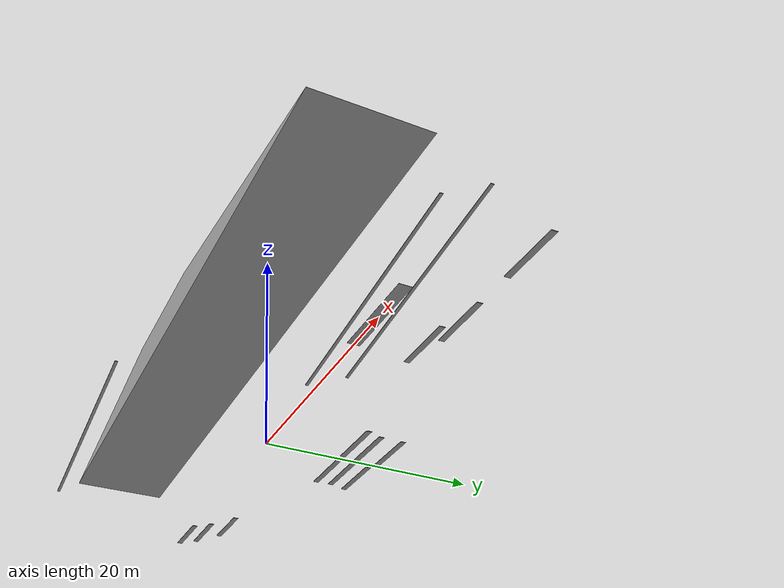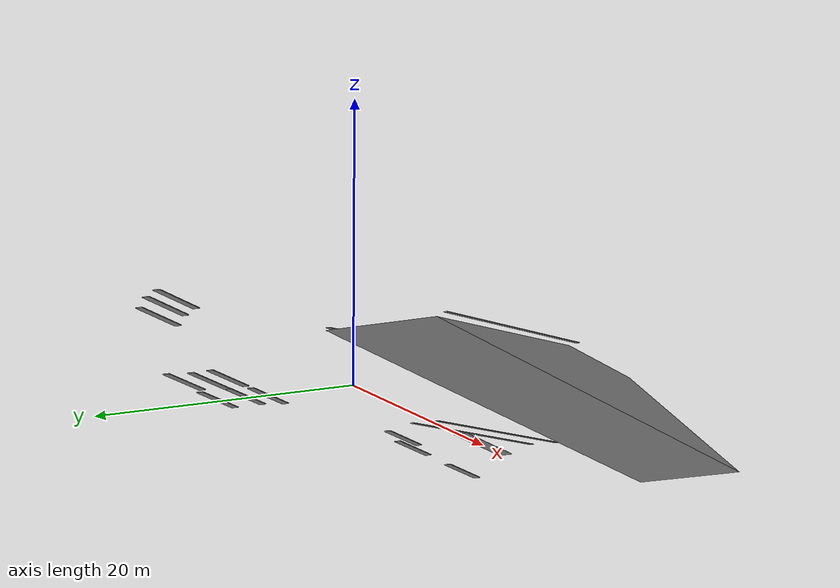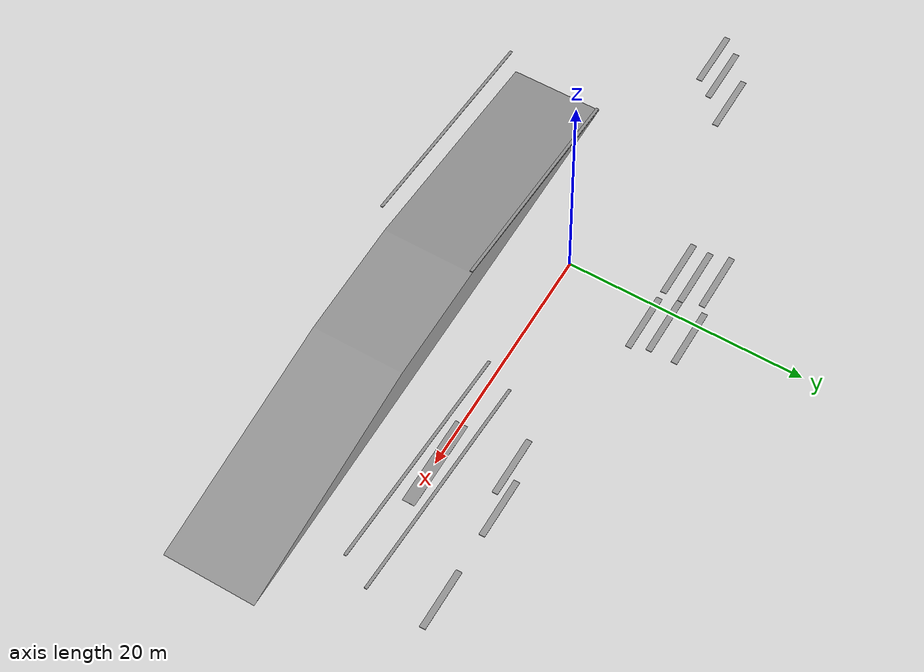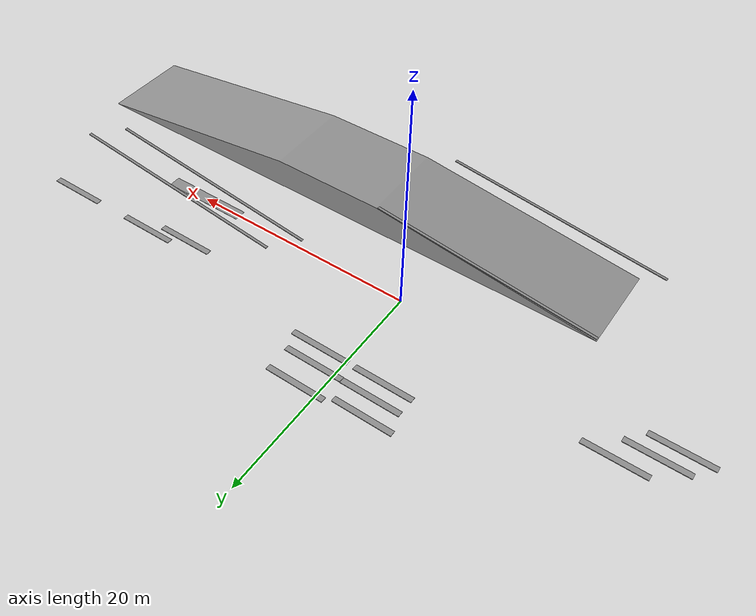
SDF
<?xml version='1.0'?>
<sdf version='1.7'>
  <model name='Hill'>
    <link name='hill_model'>
      <inertial>
        <mass>100</mass>
        <inertia>
          <ixx>0.166667</ixx>
          <ixy>0</ixy>
          <ixz>0</ixz>
          <iyy>0.166667</iyy>
          <iyz>0</iyz>
          <izz>0.166667</izz>
        </inertia>
        <pose>0 0 0 0 -0 0</pose>
      </inertial>
      <pose>8e-06 -3.4e-05 -0.020001 0 -0 0</pose>
      <self_collide>1</self_collide>
      <enable_wind>0</enable_wind>
      <kinematic>0</kinematic>
      <gravity>0</gravity>
      <visual name='visual'>
        <pose>0 0 0 0 -0 0</pose>
        <geometry>
          <mesh>
            <uri>/home/yg/ros2/OOM_Self-driving-car-line_tracker/src/ros2_term_project/3dfile/언덕구간.stl</uri>
            <scale>0.2 0.26 0.25</scale>
          </mesh>
        </geometry>
        <material>
          <lighting>1</lighting>
          <script>
            <uri>file://media/materials/scripts/gazebo.material</uri>
            <name>Gazebo/Grey</name>
          </script>
          <shader type='pixel'>
            <normal_map>__default__</normal_map>
          </shader>
          <ambient>0.3 0.3 0.3 1</ambient>
          <diffuse>0.7 0.7 0.7 1</diffuse>
          <specular>0.01 0.01 0.01 1</specular>
          <emissive>0 0 0 1</emissive>
        </material>
        <transparency>0</transparency>
        <cast_shadows>1</cast_shadows>
      </visual>
      <collision name='collision'>
        <laser_retro>0</laser_retro>
        <max_contacts>10</max_contacts>
        <pose>0 0 0 0 -0 0</pose>
        <geometry>
          <mesh>
            <uri>/home/yg/ros2/OOM_Self-driving-car-line_tracker/src/ros2_term_project/3dfile/언덕구간.stl</uri>
            <scale>0.2 0.26 0.25</scale>
          </mesh>
        </geometry>
        <surface>
          <friction>
            <ode>
              <mu>1</mu>
              <mu2>1</mu2>
              <fdir1>0 0 0</fdir1>
              <slip1>0</slip1>
              <slip2>0</slip2>
            </ode>
            <torsional>
              <coefficient>1</coefficient>
              <patch_radius>0</patch_radius>
              <surface_radius>0</surface_radius>
              <use_patch_radius>1</use_patch_radius>
              <ode>
                <slip>0</slip>
              </ode>
            </torsional>
          </friction>
          <bounce>
            <restitution_coefficient>0</restitution_coefficient>
            <threshold>1e+06</threshold>
          </bounce>
          <contact>
            <collide_without_contact>0</collide_without_contact>
            <collide_without_contact_bitmask>1</collide_without_contact_bitmask>
            <collide_bitmask>1</collide_bitmask>
            <ode>
              <soft_cfm>0</soft_cfm>
              <soft_erp>0.2</soft_erp>
              <kp>1e+13</kp>
              <kd>1</kd>
              <max_vel>0.01</max_vel>
              <min_depth>0</min_depth>
            </ode>
            <bullet>
              <split_impulse>1</split_impulse>
              <split_impulse_penetration_threshold>-0.01</split_impulse_penetration_threshold>
              <soft_cfm>0</soft_cfm>
              <soft_erp>0.2</soft_erp>
              <kp>1e+13</kp>
              <kd>1</kd>
            </bullet>
          </contact>
        </surface>
      </collision>
    </link>
    <link name='hill_center_line_1'>
      <inertial>
        <mass>1</mass>
        <inertia>
          <ixx>0.166667</ixx>
          <ixy>0</ixy>
          <ixz>0</ixz>
          <iyy>0.166667</iyy>
          <iyz>0</iyz>
          <izz>0.166667</izz>
        </inertia>
        <pose>0 0 0 0 -0 0</pose>
      </inertial>
      <pose>-21.7063 1.98729 0.584002 0.017068 -0 0</pose>
      <gravity>1</gravity>
      <self_collide>1</self_collide>
      <kinematic>0</kinematic>
      <enable_wind>0</enable_wind>
      <visual name='visual'>
        <pose>0 0 0 0 -0 0</pose>
        <geometry>
          <box>
            <size>5 0.5 0.05</size>
          </box>
        </geometry>
        <material>
          <lighting>1</lighting>
          <script>
            <uri>file://media/materials/scripts/gazebo.material</uri>
            <name>Gazebo/Grey</name>
          </script>
          <shader type='pixel'>
            <normal_map>__default__</normal_map>
          </shader>
          <ambient>1 1 1 1</ambient>
          <diffuse>1 1 1 1</diffuse>
          <specular>1 1 1 1</specular>
          <emissive>1 1 1 1</emissive>
        </material>
        <transparency>0</transparency>
        <cast_shadows>1</cast_shadows>
      </visual>
      <collision name='collision'>
        <laser_retro>0</laser_retro>
        <max_contacts>10</max_contacts>
        <pose>0 0 0 0 -0 0</pose>
        <geometry>
          <box>
            <size>5 0.5 0.05</size>
          </box>
        </geometry>
        <surface>
          <friction>
            <ode>
              <mu>1</mu>
              <mu2>1</mu2>
              <fdir1>0 0 0</fdir1>
              <slip1>0</slip1>
              <slip2>0</slip2>
            </ode>
            <torsional>
              <coefficient>1</coefficient>
              <patch_radius>0</patch_radius>
              <surface_radius>0</surface_radius>
              <use_patch_radius>1</use_patch_radius>
              <ode>
                <slip>0</slip>
              </ode>
            </torsional>
          </friction>
          <bounce>
            <restitution_coefficient>0</restitution_coefficient>
            <threshold>1e+06</threshold>
          </bounce>
          <contact>
            <collide_without_contact>0</collide_without_contact>
            <collide_without_contact_bitmask>1</collide_without_contact_bitmask>
            <collide_bitmask>1</collide_bitmask>
            <ode>
              <soft_cfm>0</soft_cfm>
              <soft_erp>0.2</soft_erp>
              <kp>1e+13</kp>
              <kd>1</kd>
              <max_vel>0.01</max_vel>
              <min_depth>0</min_depth>
            </ode>
            <bullet>
              <split_impulse>1</split_impulse>
              <split_impulse_penetration_threshold>-0.01</split_impulse_penetration_threshold>
              <soft_cfm>0</soft_cfm>
              <soft_erp>0.2</soft_erp>
              <kp>1e+13</kp>
              <kd>1</kd>
            </bullet>
          </contact>
        </surface>
      </collision>
    </link>
    <link name='hill_center_line_1_clone'>
      <inertial>
        <mass>1</mass>
        <inertia>
          <ixx>0.166667</ixx>
          <ixy>0</ixy>
          <ixz>0</ixz>
          <iyy>0.166667</iyy>
          <iyz>0</iyz>
          <izz>0.166667</izz>
        </inertia>
        <pose>0 0 0 0 -0 0</pose>
      </inertial>
      <pose>-3.50998 7.62557 0.584002 0.017068 -0 0</pose>
      <gravity>1</gravity>
      <self_collide>1</self_collide>
      <kinematic>0</kinematic>
      <enable_wind>0</enable_wind>
      <visual name='visual'>
        <pose>0 0 0 0 -0 0</pose>
        <geometry>
          <box>
            <size>5 0.5 0.05</size>
          </box>
        </geometry>
        <material>
          <lighting>1</lighting>
          <script>
            <uri>file://media/materials/scripts/gazebo.material</uri>
            <name>Gazebo/Grey</name>
          </script>
          <shader type='pixel'>
            <normal_map>__default__</normal_map>
          </shader>
          <ambient>1 1 1 1</ambient>
          <diffuse>1 1 1 1</diffuse>
          <specular>1 1 1 1</specular>
          <emissive>1 1 1 1</emissive>
        </material>
        <transparency>0</transparency>
        <cast_shadows>1</cast_shadows>
      </visual>
      <collision name='collision'>
        <laser_retro>0</laser_retro>
        <max_contacts>10</max_contacts>
        <pose>0 0 0 0 -0 0</pose>
        <geometry>
          <box>
            <size>5 0.5 0.05</size>
          </box>
        </geometry>
        <surface>
          <friction>
            <ode>
              <mu>1</mu>
              <mu2>1</mu2>
              <fdir1>0 0 0</fdir1>
              <slip1>0</slip1>
              <slip2>0</slip2>
            </ode>
            <torsional>
              <coefficient>1</coefficient>
              <patch_radius>0</patch_radius>
              <surface_radius>0</surface_radius>
              <use_patch_radius>1</use_patch_radius>
              <ode>
                <slip>0</slip>
              </ode>
            </torsional>
          </friction>
          <bounce>
            <restitution_coefficient>0</restitution_coefficient>
            <threshold>1e+06</threshold>
          </bounce>
          <contact>
            <collide_without_contact>0</collide_without_contact>
            <collide_without_contact_bitmask>1</collide_without_contact_bitmask>
            <collide_bitmask>1</collide_bitmask>
            <ode>
              <soft_cfm>0</soft_cfm>
              <soft_erp>0.2</soft_erp>
              <kp>1e+13</kp>
              <kd>1</kd>
              <max_vel>0.01</max_vel>
              <min_depth>0</min_depth>
            </ode>
            <bullet>
              <split_impulse>1</split_impulse>
              <split_impulse_penetration_threshold>-0.01</split_impulse_penetration_threshold>
              <soft_cfm>0</soft_cfm>
              <soft_erp>0.2</soft_erp>
              <kp>1e+13</kp>
              <kd>1</kd>
            </bullet>
          </contact>
        </surface>
      </collision>
    </link>
    <link name='hill_center_line_1_clone_0'>
      <inertial>
        <mass>1</mass>
        <inertia>
          <ixx>0.166667</ixx>
          <ixy>0</ixy>
          <ixz>0</ixz>
          <iyy>0.166667</iyy>
          <iyz>0</iyz>
          <izz>0.166667</izz>
        </inertia>
        <pose>0 0 0 0 -0 0</pose>
      </inertial>
      <pose>-3.45553 9.11044 0.584002 0.017068 -0 0</pose>
      <gravity>1</gravity>
      <self_collide>1</self_collide>
      <kinematic>0</kinematic>
      <enable_wind>0</enable_wind>
      <visual name='visual'>
        <pose>0 0 0 0 -0 0</pose>
        <geometry>
          <box>
            <size>5 0.5 0.05</size>
          </box>
        </geometry>
        <material>
          <lighting>1</lighting>
          <script>
            <uri>file://media/materials/scripts/gazebo.material</uri>
            <name>Gazebo/Grey</name>
          </script>
          <shader type='pixel'>
            <normal_map>__default__</normal_map>
          </shader>
          <ambient>1 1 1 1</ambient>
          <diffuse>1 1 1 1</diffuse>
          <specular>1 1 1 1</specular>
          <emissive>1 1 1 1</emissive>
        </material>
        <transparency>0</transparency>
        <cast_shadows>1</cast_shadows>
      </visual>
      <collision name='collision'>
        <laser_retro>0</laser_retro>
        <max_contacts>10</max_contacts>
        <pose>0 0 0 0 -0 0</pose>
        <geometry>
          <box>
            <size>5 0.5 0.05</size>
          </box>
        </geometry>
        <surface>
          <friction>
            <ode>
              <mu>1</mu>
              <mu2>1</mu2>
              <fdir1>0 0 0</fdir1>
              <slip1>0</slip1>
              <slip2>0</slip2>
            </ode>
            <torsional>
              <coefficient>1</coefficient>
              <patch_radius>0</patch_radius>
              <surface_radius>0</surface_radius>
              <use_patch_radius>1</use_patch_radius>
              <ode>
                <slip>0</slip>
              </ode>
            </torsional>
          </friction>
          <bounce>
            <restitution_coefficient>0</restitution_coefficient>
            <threshold>1e+06</threshold>
          </bounce>
          <contact>
            <collide_without_contact>0</collide_without_contact>
            <collide_without_contact_bitmask>1</collide_without_contact_bitmask>
            <collide_bitmask>1</collide_bitmask>
            <ode>
              <soft_cfm>0</soft_cfm>
              <soft_erp>0.2</soft_erp>
              <kp>1e+13</kp>
              <kd>1</kd>
              <max_vel>0.01</max_vel>
              <min_depth>0</min_depth>
            </ode>
            <bullet>
              <split_impulse>1</split_impulse>
              <split_impulse_penetration_threshold>-0.01</split_impulse_penetration_threshold>
              <soft_cfm>0</soft_cfm>
              <soft_erp>0.2</soft_erp>
              <kp>1e+13</kp>
              <kd>1</kd>
            </bullet>
          </contact>
        </surface>
      </collision>
    </link>
    <link name='hill_center_line_1_clone_1'>
      <inertial>
        <mass>1</mass>
        <inertia>
          <ixx>0.166667</ixx>
          <ixy>0</ixy>
          <ixz>0</ixz>
          <iyy>0.166667</iyy>
          <iyz>0</iyz>
          <izz>0.166667</izz>
        </inertia>
        <pose>0 0 0 0 -0 0</pose>
      </inertial>
      <pose>-3.90601 10.7359 0.584002 0.017068 -0 0</pose>
      <gravity>1</gravity>
      <self_collide>1</self_collide>
      <kinematic>0</kinematic>
      <enable_wind>0</enable_wind>
      <visual name='visual'>
        <pose>0 0 0 0 -0 0</pose>
        <geometry>
          <box>
            <size>5 0.5 0.05</size>
          </box>
        </geometry>
        <material>
          <lighting>1</lighting>
          <script>
            <uri>file://media/materials/scripts/gazebo.material</uri>
            <name>Gazebo/Grey</name>
          </script>
          <shader type='pixel'>
            <normal_map>__default__</normal_map>
          </shader>
          <ambient>1 1 1 1</ambient>
          <diffuse>1 1 1 1</diffuse>
          <specular>1 1 1 1</specular>
          <emissive>1 1 1 1</emissive>
        </material>
        <transparency>0</transparency>
        <cast_shadows>1</cast_shadows>
      </visual>
      <collision name='collision'>
        <laser_retro>0</laser_retro>
        <max_contacts>10</max_contacts>
        <pose>0 0 0 0 -0 0</pose>
        <geometry>
          <box>
            <size>5 0.5 0.05</size>
          </box>
        </geometry>
        <surface>
          <friction>
            <ode>
              <mu>1</mu>
              <mu2>1</mu2>
              <fdir1>0 0 0</fdir1>
              <slip1>0</slip1>
              <slip2>0</slip2>
            </ode>
            <torsional>
              <coefficient>1</coefficient>
              <patch_radius>0</patch_radius>
              <surface_radius>0</surface_radius>
              <use_patch_radius>1</use_patch_radius>
              <ode>
                <slip>0</slip>
              </ode>
            </torsional>
          </friction>
          <bounce>
            <restitution_coefficient>0</restitution_coefficient>
            <threshold>1e+06</threshold>
          </bounce>
          <contact>
            <collide_without_contact>0</collide_without_contact>
            <collide_without_contact_bitmask>1</collide_without_contact_bitmask>
            <collide_bitmask>1</collide_bitmask>
            <ode>
              <soft_cfm>0</soft_cfm>
              <soft_erp>0.2</soft_erp>
              <kp>1e+13</kp>
              <kd>1</kd>
              <max_vel>0.01</max_vel>
              <min_depth>0</min_depth>
            </ode>
            <bullet>
              <split_impulse>1</split_impulse>
              <split_impulse_penetration_threshold>-0.01</split_impulse_penetration_threshold>
              <soft_cfm>0</soft_cfm>
              <soft_erp>0.2</soft_erp>
              <kp>1e+13</kp>
              <kd>1</kd>
            </bullet>
          </contact>
        </surface>
      </collision>
    </link>
    <link name='hill_center_line_1_clone_2'>
      <inertial>
        <mass>1</mass>
        <inertia>
          <ixx>0.166667</ixx>
          <ixy>0</ixy>
          <ixz>0</ixz>
          <iyy>0.166667</iyy>
          <iyz>0</iyz>
          <izz>0.166667</izz>
        </inertia>
        <pose>0 0 0 0 -0 0</pose>
      </inertial>
      <pose>2.07681 7.61238 0.584002 0.017068 -0 0</pose>
      <gravity>1</gravity>
      <self_collide>1</self_collide>
      <kinematic>0</kinematic>
      <enable_wind>0</enable_wind>
      <visual name='visual'>
        <pose>0 0 0 0 -0 0</pose>
        <geometry>
          <box>
            <size>5 0.5 0.05</size>
          </box>
        </geometry>
        <material>
          <lighting>1</lighting>
          <script>
            <uri>file://media/materials/scripts/gazebo.material</uri>
            <name>Gazebo/Grey</name>
          </script>
          <shader type='pixel'>
            <normal_map>__default__</normal_map>
          </shader>
          <ambient>1 1 1 1</ambient>
          <diffuse>1 1 1 1</diffuse>
          <specular>1 1 1 1</specular>
          <emissive>1 1 1 1</emissive>
        </material>
        <transparency>0</transparency>
        <cast_shadows>1</cast_shadows>
      </visual>
      <collision name='collision'>
        <laser_retro>0</laser_retro>
        <max_contacts>10</max_contacts>
        <pose>0 0 0 0 -0 0</pose>
        <geometry>
          <box>
            <size>5 0.5 0.05</size>
          </box>
        </geometry>
        <surface>
          <friction>
            <ode>
              <mu>1</mu>
              <mu2>1</mu2>
              <fdir1>0 0 0</fdir1>
              <slip1>0</slip1>
              <slip2>0</slip2>
            </ode>
            <torsional>
              <coefficient>1</coefficient>
              <patch_radius>0</patch_radius>
              <surface_radius>0</surface_radius>
              <use_patch_radius>1</use_patch_radius>
              <ode>
                <slip>0</slip>
              </ode>
            </torsional>
          </friction>
          <bounce>
            <restitution_coefficient>0</restitution_coefficient>
            <threshold>1e+06</threshold>
          </bounce>
          <contact>
            <collide_without_contact>0</collide_without_contact>
            <collide_without_contact_bitmask>1</collide_without_contact_bitmask>
            <collide_bitmask>1</collide_bitmask>
            <ode>
              <soft_cfm>0</soft_cfm>
              <soft_erp>0.2</soft_erp>
              <kp>1e+13</kp>
              <kd>1</kd>
              <max_vel>0.01</max_vel>
              <min_depth>0</min_depth>
            </ode>
            <bullet>
              <split_impulse>1</split_impulse>
              <split_impulse_penetration_threshold>-0.01</split_impulse_penetration_threshold>
              <soft_cfm>0</soft_cfm>
              <soft_erp>0.2</soft_erp>
              <kp>1e+13</kp>
              <kd>1</kd>
            </bullet>
          </contact>
        </surface>
      </collision>
    </link>
    <link name='hill_center_line_1_clone_3'>
      <inertial>
        <mass>1</mass>
        <inertia>
          <ixx>0.166667</ixx>
          <ixy>0</ixy>
          <ixz>0</ixz>
          <iyy>0.166667</iyy>
          <iyz>0</iyz>
          <izz>0.166667</izz>
        </inertia>
        <pose>0 0 0 0 -0 0</pose>
      </inertial>
      <pose>1.57351 9.09087 0.584002 0.017068 -0 0</pose>
      <gravity>1</gravity>
      <self_collide>1</self_collide>
      <kinematic>0</kinematic>
      <enable_wind>0</enable_wind>
      <visual name='visual'>
        <pose>0 0 0 0 -0 0</pose>
        <geometry>
          <box>
            <size>5 0.5 0.05</size>
          </box>
        </geometry>
        <material>
          <lighting>1</lighting>
          <script>
            <uri>file://media/materials/scripts/gazebo.material</uri>
            <name>Gazebo/Grey</name>
          </script>
          <shader type='pixel'>
            <normal_map>__default__</normal_map>
          </shader>
          <ambient>1 1 1 1</ambient>
          <diffuse>1 1 1 1</diffuse>
          <specular>1 1 1 1</specular>
          <emissive>1 1 1 1</emissive>
        </material>
        <transparency>0</transparency>
        <cast_shadows>1</cast_shadows>
      </visual>
      <collision name='collision'>
        <laser_retro>0</laser_retro>
        <max_contacts>10</max_contacts>
        <pose>0 0 0 0 -0 0</pose>
        <geometry>
          <box>
            <size>5 0.5 0.05</size>
          </box>
        </geometry>
        <surface>
          <friction>
            <ode>
              <mu>1</mu>
              <mu2>1</mu2>
              <fdir1>0 0 0</fdir1>
              <slip1>0</slip1>
              <slip2>0</slip2>
            </ode>
            <torsional>
              <coefficient>1</coefficient>
              <patch_radius>0</patch_radius>
              <surface_radius>0</surface_radius>
              <use_patch_radius>1</use_patch_radius>
              <ode>
                <slip>0</slip>
              </ode>
            </torsional>
          </friction>
          <bounce>
            <restitution_coefficient>0</restitution_coefficient>
            <threshold>1e+06</threshold>
          </bounce>
          <contact>
            <collide_without_contact>0</collide_without_contact>
            <collide_without_contact_bitmask>1</collide_without_contact_bitmask>
            <collide_bitmask>1</collide_bitmask>
            <ode>
              <soft_cfm>0</soft_cfm>
              <soft_erp>0.2</soft_erp>
              <kp>1e+13</kp>
              <kd>1</kd>
              <max_vel>0.01</max_vel>
              <min_depth>0</min_depth>
            </ode>
            <bullet>
              <split_impulse>1</split_impulse>
              <split_impulse_penetration_threshold>-0.01</split_impulse_penetration_threshold>
              <soft_cfm>0</soft_cfm>
              <soft_erp>0.2</soft_erp>
              <kp>1e+13</kp>
              <kd>1</kd>
            </bullet>
          </contact>
        </surface>
      </collision>
    </link>
    <link name='hill_center_line_1_clone_4'>
      <inertial>
        <mass>1</mass>
        <inertia>
          <ixx>0.166667</ixx>
          <ixy>0</ixy>
          <ixz>0</ixz>
          <iyy>0.166667</iyy>
          <iyz>0</iyz>
          <izz>0.166667</izz>
        </inertia>
        <pose>0 0 0 0 -0 0</pose>
      </inertial>
      <pose>1.5596 11.2413 0.584002 0.017068 -0 0</pose>
      <gravity>1</gravity>
      <self_collide>1</self_collide>
      <kinematic>0</kinematic>
      <enable_wind>0</enable_wind>
      <visual name='visual'>
        <pose>0 0 0 0 -0 0</pose>
        <geometry>
          <box>
            <size>5 0.5 0.05</size>
          </box>
        </geometry>
        <material>
          <lighting>1</lighting>
          <script>
            <uri>file://media/materials/scripts/gazebo.material</uri>
            <name>Gazebo/Grey</name>
          </script>
          <shader type='pixel'>
            <normal_map>__default__</normal_map>
          </shader>
          <ambient>1 1 1 1</ambient>
          <diffuse>1 1 1 1</diffuse>
          <specular>1 1 1 1</specular>
          <emissive>1 1 1 1</emissive>
        </material>
        <transparency>0</transparency>
        <cast_shadows>1</cast_shadows>
      </visual>
      <collision name='collision'>
        <laser_retro>0</laser_retro>
        <max_contacts>10</max_contacts>
        <pose>0 0 0 0 -0 0</pose>
        <geometry>
          <box>
            <size>5 0.5 0.05</size>
          </box>
        </geometry>
        <surface>
          <friction>
            <ode>
              <mu>1</mu>
              <mu2>1</mu2>
              <fdir1>0 0 0</fdir1>
              <slip1>0</slip1>
              <slip2>0</slip2>
            </ode>
            <torsional>
              <coefficient>1</coefficient>
              <patch_radius>0</patch_radius>
              <surface_radius>0</surface_radius>
              <use_patch_radius>1</use_patch_radius>
              <ode>
                <slip>0</slip>
              </ode>
            </torsional>
          </friction>
          <bounce>
            <restitution_coefficient>0</restitution_coefficient>
            <threshold>1e+06</threshold>
          </bounce>
          <contact>
            <collide_without_contact>0</collide_without_contact>
            <collide_without_contact_bitmask>1</collide_without_contact_bitmask>
            <collide_bitmask>1</collide_bitmask>
            <ode>
              <soft_cfm>0</soft_cfm>
              <soft_erp>0.2</soft_erp>
              <kp>1e+13</kp>
              <kd>1</kd>
              <max_vel>0.01</max_vel>
              <min_depth>0</min_depth>
            </ode>
            <bullet>
              <split_impulse>1</split_impulse>
              <split_impulse_penetration_threshold>-0.01</split_impulse_penetration_threshold>
              <soft_cfm>0</soft_cfm>
              <soft_erp>0.2</soft_erp>
              <kp>1e+13</kp>
              <kd>1</kd>
            </bullet>
          </contact>
        </surface>
      </collision>
    </link>
    <link name='hill_center_line_2'>
      <inertial>
        <mass>1</mass>
        <inertia>
          <ixx>0.166667</ixx>
          <ixy>0</ixy>
          <ixz>0</ixz>
          <iyy>0.166667</iyy>
          <iyz>0</iyz>
          <izz>0.166667</izz>
        </inertia>
        <pose>0 0 0 0 -0 0</pose>
      </inertial>
      <pose>-22.8574 0.567898 0.593781 0.034136 -0 0</pose>
      <gravity>1</gravity>
      <self_collide>1</self_collide>
      <kinematic>0</kinematic>
      <enable_wind>0</enable_wind>
      <visual name='visual'>
        <pose>0 0 0 0 -0 0</pose>
        <geometry>
          <box>
            <size>5 0.5 0.05</size>
          </box>
        </geometry>
        <material>
          <lighting>1</lighting>
          <script>
            <uri>file://media/materials/scripts/gazebo.material</uri>
            <name>Gazebo/Grey</name>
          </script>
          <shader type='pixel'>
            <normal_map>__default__</normal_map>
          </shader>
          <ambient>1 1 1 1</ambient>
          <diffuse>1 1 1 1</diffuse>
          <specular>1 1 1 1</specular>
          <emissive>1 1 1 1</emissive>
        </material>
        <transparency>0</transparency>
        <cast_shadows>1</cast_shadows>
      </visual>
      <collision name='collision'>
        <laser_retro>0</laser_retro>
        <max_contacts>10</max_contacts>
        <pose>0 0 0 0 -0 0</pose>
        <geometry>
          <box>
            <size>5 0.5 0.05</size>
          </box>
        </geometry>
        <surface>
          <friction>
            <ode>
              <mu>1</mu>
              <mu2>1</mu2>
              <fdir1>0 0 0</fdir1>
              <slip1>0</slip1>
              <slip2>0</slip2>
            </ode>
            <torsional>
              <coefficient>1</coefficient>
              <patch_radius>0</patch_radius>
              <surface_radius>0</surface_radius>
              <use_patch_radius>1</use_patch_radius>
              <ode>
                <slip>0</slip>
              </ode>
            </torsional>
          </friction>
          <bounce>
            <restitution_coefficient>0</restitution_coefficient>
            <threshold>1e+06</threshold>
          </bounce>
          <contact>
            <collide_without_contact>0</collide_without_contact>
            <collide_without_contact_bitmask>1</collide_without_contact_bitmask>
            <collide_bitmask>1</collide_bitmask>
            <ode>
              <soft_cfm>0</soft_cfm>
              <soft_erp>0.2</soft_erp>
              <kp>1e+13</kp>
              <kd>1</kd>
              <max_vel>0.01</max_vel>
              <min_depth>0</min_depth>
            </ode>
            <bullet>
              <split_impulse>1</split_impulse>
              <split_impulse_penetration_threshold>-0.01</split_impulse_penetration_threshold>
              <soft_cfm>0</soft_cfm>
              <soft_erp>0.2</soft_erp>
              <kp>1e+13</kp>
              <kd>1</kd>
            </bullet>
          </contact>
        </surface>
      </collision>
    </link>
    <link name='hill_center_line_3'>
      <inertial>
        <mass>1</mass>
        <inertia>
          <ixx>0.166667</ixx>
          <ixy>0</ixy>
          <ixz>0</ixz>
          <iyy>0.166667</iyy>
          <iyz>0</iyz>
          <izz>0.166667</izz>
        </inertia>
        <pose>0 0 0 0 -0 0</pose>
      </inertial>
      <pose>-19.4479 3.7915 0.648807 0.034136 -0 0</pose>
      <gravity>1</gravity>
      <self_collide>1</self_collide>
      <kinematic>0</kinematic>
      <enable_wind>0</enable_wind>
      <visual name='visual'>
        <pose>0 0 0 0 -0 0</pose>
        <geometry>
          <box>
            <size>5 0.5 0.05</size>
          </box>
        </geometry>
        <material>
          <lighting>1</lighting>
          <script>
            <uri>file://media/materials/scripts/gazebo.material</uri>
            <name>Gazebo/Grey</name>
          </script>
          <shader type='pixel'>
            <normal_map>__default__</normal_map>
          </shader>
          <ambient>1 1 1 1</ambient>
          <diffuse>1 1 1 1</diffuse>
          <specular>1 1 1 1</specular>
          <emissive>1 1 1 1</emissive>
        </material>
        <transparency>0</transparency>
        <cast_shadows>1</cast_shadows>
      </visual>
      <collision name='collision'>
        <laser_retro>0</laser_retro>
        <max_contacts>10</max_contacts>
        <pose>0 0 0 0 -0 0</pose>
        <geometry>
          <box>
            <size>5 0.5 0.05</size>
          </box>
        </geometry>
        <surface>
          <friction>
            <ode>
              <mu>1</mu>
              <mu2>1</mu2>
              <fdir1>0 0 0</fdir1>
              <slip1>0</slip1>
              <slip2>0</slip2>
            </ode>
            <torsional>
              <coefficient>1</coefficient>
              <patch_radius>0</patch_radius>
              <surface_radius>0</surface_radius>
              <use_patch_radius>1</use_patch_radius>
              <ode>
                <slip>0</slip>
              </ode>
            </torsional>
          </friction>
          <bounce>
            <restitution_coefficient>0</restitution_coefficient>
            <threshold>1e+06</threshold>
          </bounce>
          <contact>
            <collide_without_contact>0</collide_without_contact>
            <collide_without_contact_bitmask>1</collide_without_contact_bitmask>
            <collide_bitmask>1</collide_bitmask>
            <ode>
              <soft_cfm>0</soft_cfm>
              <soft_erp>0.2</soft_erp>
              <kp>1e+13</kp>
              <kd>1</kd>
              <max_vel>0.01</max_vel>
              <min_depth>0</min_depth>
            </ode>
            <bullet>
              <split_impulse>1</split_impulse>
              <split_impulse_penetration_threshold>-0.01</split_impulse_penetration_threshold>
              <soft_cfm>0</soft_cfm>
              <soft_erp>0.2</soft_erp>
              <kp>1e+13</kp>
              <kd>1</kd>
            </bullet>
          </contact>
        </surface>
      </collision>
    </link>
    <link name='hill_center_line_down_1'>
      <inertial>
        <mass>1</mass>
        <inertia>
          <ixx>0.166667</ixx>
          <ixy>0</ixy>
          <ixz>0</ixz>
          <iyy>0.166667</iyy>
          <iyz>0</iyz>
          <izz>0.166667</izz>
        </inertia>
        <pose>0 0 0 0 -0 0</pose>
      </inertial>
      <pose>29.1675 6.06852 0.584002 0.017068 -0 0</pose>
      <gravity>1</gravity>
      <self_collide>1</self_collide>
      <kinematic>0</kinematic>
      <enable_wind>0</enable_wind>
      <visual name='visual'>
        <pose>0 0 0 0 -0 0</pose>
        <geometry>
          <box>
            <size>5 0.5 0.05</size>
          </box>
        </geometry>
        <material>
          <lighting>1</lighting>
          <script>
            <uri>file://media/materials/scripts/gazebo.material</uri>
            <name>Gazebo/Grey</name>
          </script>
          <shader type='pixel'>
            <normal_map>__default__</normal_map>
          </shader>
          <ambient>1 1 1 1</ambient>
          <diffuse>1 1 1 1</diffuse>
          <specular>1 1 1 1</specular>
          <emissive>1 1 1 1</emissive>
        </material>
        <transparency>0</transparency>
        <cast_shadows>1</cast_shadows>
      </visual>
      <collision name='collision'>
        <laser_retro>0</laser_retro>
        <max_contacts>10</max_contacts>
        <pose>0 0 0 0 -0 0</pose>
        <geometry>
          <box>
            <size>5 0.5 0.05</size>
          </box>
        </geometry>
        <surface>
          <friction>
            <ode>
              <mu>1</mu>
              <mu2>1</mu2>
              <fdir1>0 0 0</fdir1>
              <slip1>0</slip1>
              <slip2>0</slip2>
            </ode>
            <torsional>
              <coefficient>1</coefficient>
              <patch_radius>0</patch_radius>
              <surface_radius>0</surface_radius>
              <use_patch_radius>1</use_patch_radius>
              <ode>
                <slip>0</slip>
              </ode>
            </torsional>
          </friction>
          <bounce>
            <restitution_coefficient>0</restitution_coefficient>
            <threshold>1e+06</threshold>
          </bounce>
          <contact>
            <collide_without_contact>0</collide_without_contact>
            <collide_without_contact_bitmask>1</collide_without_contact_bitmask>
            <collide_bitmask>1</collide_bitmask>
            <ode>
              <soft_cfm>0</soft_cfm>
              <soft_erp>0.2</soft_erp>
              <kp>1e+13</kp>
              <kd>1</kd>
              <max_vel>0.01</max_vel>
              <min_depth>0</min_depth>
            </ode>
            <bullet>
              <split_impulse>1</split_impulse>
              <split_impulse_penetration_threshold>-0.01</split_impulse_penetration_threshold>
              <soft_cfm>0</soft_cfm>
              <soft_erp>0.2</soft_erp>
              <kp>1e+13</kp>
              <kd>1</kd>
            </bullet>
          </contact>
        </surface>
      </collision>
    </link>
    <link name='hill_center_line_down_2'>
      <inertial>
        <mass>1</mass>
        <inertia>
          <ixx>0.166667</ixx>
          <ixy>0</ixy>
          <ixz>0</ixz>
          <iyy>0.166667</iyy>
          <iyz>0</iyz>
          <izz>0.166667</izz>
        </inertia>
        <pose>0 0 0 0 -0 0</pose>
      </inertial>
      <pose>17.6375 5.14233 0.593781 0.034136 -0 0</pose>
      <gravity>1</gravity>
      <self_collide>1</self_collide>
      <kinematic>0</kinematic>
      <enable_wind>0</enable_wind>
      <visual name='visual'>
        <pose>0 0 0 0 -0 0</pose>
        <geometry>
          <box>
            <size>5 0.5 0.05</size>
          </box>
        </geometry>
        <material>
          <lighting>1</lighting>
          <script>
            <uri>file://media/materials/scripts/gazebo.material</uri>
            <name>Gazebo/Grey</name>
          </script>
          <shader type='pixel'>
            <normal_map>__default__</normal_map>
          </shader>
          <ambient>1 1 1 1</ambient>
          <diffuse>1 1 1 1</diffuse>
          <specular>1 1 1 1</specular>
          <emissive>1 1 1 1</emissive>
        </material>
        <transparency>0</transparency>
        <cast_shadows>1</cast_shadows>
      </visual>
      <collision name='collision'>
        <laser_retro>0</laser_retro>
        <max_contacts>10</max_contacts>
        <pose>0 0 0 0 -0 0</pose>
        <geometry>
          <box>
            <size>5 0.5 0.05</size>
          </box>
        </geometry>
        <surface>
          <friction>
            <ode>
              <mu>1</mu>
              <mu2>1</mu2>
              <fdir1>0 0 0</fdir1>
              <slip1>0</slip1>
              <slip2>0</slip2>
            </ode>
            <torsional>
              <coefficient>1</coefficient>
              <patch_radius>0</patch_radius>
              <surface_radius>0</surface_radius>
              <use_patch_radius>1</use_patch_radius>
              <ode>
                <slip>0</slip>
              </ode>
            </torsional>
          </friction>
          <bounce>
            <restitution_coefficient>0</restitution_coefficient>
            <threshold>1e+06</threshold>
          </bounce>
          <contact>
            <collide_without_contact>0</collide_without_contact>
            <collide_without_contact_bitmask>1</collide_without_contact_bitmask>
            <collide_bitmask>1</collide_bitmask>
            <ode>
              <soft_cfm>0</soft_cfm>
              <soft_erp>0.2</soft_erp>
              <kp>1e+13</kp>
              <kd>1</kd>
              <max_vel>0.01</max_vel>
              <min_depth>0</min_depth>
            </ode>
            <bullet>
              <split_impulse>1</split_impulse>
              <split_impulse_penetration_threshold>-0.01</split_impulse_penetration_threshold>
              <soft_cfm>0</soft_cfm>
              <soft_erp>0.2</soft_erp>
              <kp>1e+13</kp>
              <kd>1</kd>
            </bullet>
          </contact>
        </surface>
      </collision>
    </link>
    <link name='hill_center_line_down_3'>
      <inertial>
        <mass>1</mass>
        <inertia>
          <ixx>0.166667</ixx>
          <ixy>0</ixy>
          <ixz>0</ixz>
          <iyy>0.166667</iyy>
          <iyz>0</iyz>
          <izz>0.166667</izz>
        </inertia>
        <pose>0 0 0 0 -0 0</pose>
      </inertial>
      <pose>21.0249 6.05951 0.648807 0.034136 -0 0</pose>
      <gravity>1</gravity>
      <self_collide>1</self_collide>
      <kinematic>0</kinematic>
      <enable_wind>0</enable_wind>
      <visual name='visual'>
        <pose>0 0 0 0 -0 0</pose>
        <geometry>
          <box>
            <size>5 0.5 0.05</size>
          </box>
        </geometry>
        <material>
          <lighting>1</lighting>
          <script>
            <uri>file://media/materials/scripts/gazebo.material</uri>
            <name>Gazebo/Grey</name>
          </script>
          <shader type='pixel'>
            <normal_map>__default__</normal_map>
          </shader>
          <ambient>1 1 1 1</ambient>
          <diffuse>1 1 1 1</diffuse>
          <specular>1 1 1 1</specular>
          <emissive>1 1 1 1</emissive>
        </material>
        <transparency>0</transparency>
        <cast_shadows>1</cast_shadows>
      </visual>
      <collision name='collision'>
        <laser_retro>0</laser_retro>
        <max_contacts>10</max_contacts>
        <pose>0 0 0 0 -0 0</pose>
        <geometry>
          <box>
            <size>5 0.5 0.05</size>
          </box>
        </geometry>
        <surface>
          <friction>
            <ode>
              <mu>1</mu>
              <mu2>1</mu2>
              <fdir1>0 0 0</fdir1>
              <slip1>0</slip1>
              <slip2>0</slip2>
            </ode>
            <torsional>
              <coefficient>1</coefficient>
              <patch_radius>0</patch_radius>
              <surface_radius>0</surface_radius>
              <use_patch_radius>1</use_patch_radius>
              <ode>
                <slip>0</slip>
              </ode>
            </torsional>
          </friction>
          <bounce>
            <restitution_coefficient>0</restitution_coefficient>
            <threshold>1e+06</threshold>
          </bounce>
          <contact>
            <collide_without_contact>0</collide_without_contact>
            <collide_without_contact_bitmask>1</collide_without_contact_bitmask>
            <collide_bitmask>1</collide_bitmask>
            <ode>
              <soft_cfm>0</soft_cfm>
              <soft_erp>0.2</soft_erp>
              <kp>1e+13</kp>
              <kd>1</kd>
              <max_vel>0.01</max_vel>
              <min_depth>0</min_depth>
            </ode>
            <bullet>
              <split_impulse>1</split_impulse>
              <split_impulse_penetration_threshold>-0.01</split_impulse_penetration_threshold>
              <soft_cfm>0</soft_cfm>
              <soft_erp>0.2</soft_erp>
              <kp>1e+13</kp>
              <kd>1</kd>
            </bullet>
          </contact>
        </surface>
      </collision>
    </link>
    <link name='hill_side_line_1'>
      <inertial>
        <mass>40</mass>
        <inertia>
          <ixx>6.66667</ixx>
          <ixy>0</ixy>
          <ixz>0</ixz>
          <iyy>6.66667</iyy>
          <iyz>0</iyz>
          <izz>6.66667</izz>
        </inertia>
        <pose>0 0 0 0 -0 0</pose>
      </inertial>
      <pose>-4.05447 -5.33409 1.41703 0.017068 -0.127001 0</pose>
      <gravity>1</gravity>
      <self_collide>1</self_collide>
      <kinematic>0</kinematic>
      <enable_wind>0</enable_wind>
      <visual name='visual'>
        <pose>0 0 0 0 -0 0</pose>
        <geometry>
          <box>
            <size>20 0.25 0.05</size>
          </box>
        </geometry>
        <material>
          <lighting>1</lighting>
          <script>
            <uri>file://media/materials/scripts/gazebo.material</uri>
            <name>Gazebo/Grey</name>
          </script>
          <shader type='pixel'>
            <normal_map>__default__</normal_map>
          </shader>
          <ambient>1 1 1 1</ambient>
          <diffuse>1 1 1 1</diffuse>
          <specular>1 1 1 1</specular>
          <emissive>1 1 1 1</emissive>
        </material>
        <transparency>0</transparency>
        <cast_shadows>1</cast_shadows>
      </visual>
      <collision name='collision'>
        <laser_retro>0</laser_retro>
        <max_contacts>10</max_contacts>
        <pose>0 0 0 0 -0 0</pose>
        <geometry>
          <box>
            <size>20 0.25 0.05</size>
          </box>
        </geometry>
        <surface>
          <friction>
            <ode>
              <mu>1</mu>
              <mu2>1</mu2>
              <fdir1>0 0 0</fdir1>
              <slip1>0</slip1>
              <slip2>0</slip2>
            </ode>
            <torsional>
              <coefficient>1</coefficient>
              <patch_radius>0</patch_radius>
              <surface_radius>0</surface_radius>
              <use_patch_radius>1</use_patch_radius>
              <ode>
                <slip>0</slip>
              </ode>
            </torsional>
          </friction>
          <bounce>
            <restitution_coefficient>0</restitution_coefficient>
            <threshold>1e+06</threshold>
          </bounce>
          <contact>
            <collide_without_contact>0</collide_without_contact>
            <collide_without_contact_bitmask>1</collide_without_contact_bitmask>
            <collide_bitmask>1</collide_bitmask>
            <ode>
              <soft_cfm>0</soft_cfm>
              <soft_erp>0.2</soft_erp>
              <kp>1e+13</kp>
              <kd>1</kd>
              <max_vel>0.01</max_vel>
              <min_depth>0</min_depth>
            </ode>
            <bullet>
              <split_impulse>1</split_impulse>
              <split_impulse_penetration_threshold>-0.01</split_impulse_penetration_threshold>
              <soft_cfm>0</soft_cfm>
              <soft_erp>0.2</soft_erp>
              <kp>1e+13</kp>
              <kd>1</kd>
            </bullet>
          </contact>
        </surface>
      </collision>
    </link>
    <link name='hill_side_line_2'>
      <inertial>
        <mass>40</mass>
        <inertia>
          <ixx>6.66667</ixx>
          <ixy>0</ixy>
          <ixz>0</ixz>
          <iyy>6.66667</iyy>
          <iyz>0</iyz>
          <izz>6.66667</izz>
        </inertia>
        <pose>0 0 0 0 -0 0</pose>
      </inertial>
      <pose>-5.87476 -14.5014 0.951112 0.034275 -0.126982 -0.002179</pose>
      <gravity>1</gravity>
      <self_collide>1</self_collide>
      <kinematic>0</kinematic>
      <enable_wind>0</enable_wind>
      <visual name='visual_0'>
        <pose>0 0 0 0 -0 0</pose>
        <geometry>
          <box>
            <size>20 0.25 0.05</size>
          </box>
        </geometry>
        <material>
          <lighting>1</lighting>
          <script>
            <uri>file://media/materials/scripts/gazebo.material</uri>
            <name>Gazebo/Grey</name>
          </script>
          <shader type='pixel'>
            <normal_map>__default__</normal_map>
          </shader>
          <ambient>1 1 1 1</ambient>
          <diffuse>1 1 1 1</diffuse>
          <specular>1 1 1 1</specular>
          <emissive>1 1 1 1</emissive>
        </material>
        <transparency>0</transparency>
        <cast_shadows>1</cast_shadows>
      </visual>
      <collision name='collision'>
        <laser_retro>0</laser_retro>
        <max_contacts>10</max_contacts>
        <pose>0 0 0 0 -0 0</pose>
        <geometry>
          <box>
            <size>20 0.25 0.05</size>
          </box>
        </geometry>
        <surface>
          <friction>
            <ode>
              <mu>1</mu>
              <mu2>1</mu2>
              <fdir1>0 0 0</fdir1>
              <slip1>0</slip1>
              <slip2>0</slip2>
            </ode>
            <torsional>
              <coefficient>1</coefficient>
              <patch_radius>0</patch_radius>
              <surface_radius>0</surface_radius>
              <use_patch_radius>1</use_patch_radius>
              <ode>
                <slip>0</slip>
              </ode>
            </torsional>
          </friction>
          <bounce>
            <restitution_coefficient>0</restitution_coefficient>
            <threshold>1e+06</threshold>
          </bounce>
          <contact>
            <collide_without_contact>0</collide_without_contact>
            <collide_without_contact_bitmask>1</collide_without_contact_bitmask>
            <collide_bitmask>1</collide_bitmask>
            <ode>
              <soft_cfm>0</soft_cfm>
              <soft_erp>0.2</soft_erp>
              <kp>1e+13</kp>
              <kd>1</kd>
              <max_vel>0.01</max_vel>
              <min_depth>0</min_depth>
            </ode>
            <bullet>
              <split_impulse>1</split_impulse>
              <split_impulse_penetration_threshold>-0.01</split_impulse_penetration_threshold>
              <soft_cfm>0</soft_cfm>
              <soft_erp>0.2</soft_erp>
              <kp>1e+13</kp>
              <kd>1</kd>
            </bullet>
          </contact>
        </surface>
      </collision>
    </link>
    <link name='hill_side_line_down_1'>
      <inertial>
        <mass>40</mass>
        <inertia>
          <ixx>6.66667</ixx>
          <ixy>0</ixy>
          <ixz>0</ixz>
          <iyy>6.66667</iyy>
          <iyz>0</iyz>
          <izz>6.66667</izz>
        </inertia>
        <pose>0 0 0 0 -0 0</pose>
      </inertial>
      <pose>21.9224 1.64835 1.41703 0.017068 -0.127001 0</pose>
      <gravity>1</gravity>
      <self_collide>1</self_collide>
      <kinematic>0</kinematic>
      <enable_wind>0</enable_wind>
      <visual name='visual'>
        <pose>0 0 0 0 -0 0</pose>
        <geometry>
          <box>
            <size>20 0.25 0.05</size>
          </box>
        </geometry>
        <material>
          <lighting>1</lighting>
          <script>
            <uri>file://media/materials/scripts/gazebo.material</uri>
            <name>Gazebo/Grey</name>
          </script>
          <shader type='pixel'>
            <normal_map>__default__</normal_map>
          </shader>
          <ambient>1 1 1 1</ambient>
          <diffuse>1 1 1 1</diffuse>
          <specular>1 1 1 1</specular>
          <emissive>1 1 1 1</emissive>
        </material>
        <transparency>0</transparency>
        <cast_shadows>1</cast_shadows>
      </visual>
      <collision name='collision'>
        <laser_retro>0</laser_retro>
        <max_contacts>10</max_contacts>
        <pose>0 0 0 0 -0 0</pose>
        <geometry>
          <box>
            <size>20 0.25 0.05</size>
          </box>
        </geometry>
        <surface>
          <friction>
            <ode>
              <mu>1</mu>
              <mu2>1</mu2>
              <fdir1>0 0 0</fdir1>
              <slip1>0</slip1>
              <slip2>0</slip2>
            </ode>
            <torsional>
              <coefficient>1</coefficient>
              <patch_radius>0</patch_radius>
              <surface_radius>0</surface_radius>
              <use_patch_radius>1</use_patch_radius>
              <ode>
                <slip>0</slip>
              </ode>
            </torsional>
          </friction>
          <bounce>
            <restitution_coefficient>0</restitution_coefficient>
            <threshold>1e+06</threshold>
          </bounce>
          <contact>
            <collide_without_contact>0</collide_without_contact>
            <collide_without_contact_bitmask>1</collide_without_contact_bitmask>
            <collide_bitmask>1</collide_bitmask>
            <ode>
              <soft_cfm>0</soft_cfm>
              <soft_erp>0.2</soft_erp>
              <kp>1e+13</kp>
              <kd>1</kd>
              <max_vel>0.01</max_vel>
              <min_depth>0</min_depth>
            </ode>
            <bullet>
              <split_impulse>1</split_impulse>
              <split_impulse_penetration_threshold>-0.01</split_impulse_penetration_threshold>
              <soft_cfm>0</soft_cfm>
              <soft_erp>0.2</soft_erp>
              <kp>1e+13</kp>
              <kd>1</kd>
            </bullet>
          </contact>
        </surface>
      </collision>
    </link>
    <link name='hill_side_line_down_2'>
      <inertial>
        <mass>40</mass>
        <inertia>
          <ixx>6.66667</ixx>
          <ixy>0</ixy>
          <ixz>0</ixz>
          <iyy>6.66667</iyy>
          <iyz>0</iyz>
          <izz>6.66667</izz>
        </inertia>
        <pose>0 0 0 0 -0 0</pose>
      </inertial>
      <pose>20.3654 -1.06464 0.951112 0.034275 -0.126982 -0.002179</pose>
      <gravity>1</gravity>
      <self_collide>1</self_collide>
      <kinematic>0</kinematic>
      <enable_wind>0</enable_wind>
      <visual name='visual_0'>
        <pose>0 0 0 0 -0 0</pose>
        <geometry>
          <box>
            <size>20 0.25 0.05</size>
          </box>
        </geometry>
        <material>
          <lighting>1</lighting>
          <script>
            <uri>file://media/materials/scripts/gazebo.material</uri>
            <name>Gazebo/Grey</name>
          </script>
          <shader type='pixel'>
            <normal_map>__default__</normal_map>
          </shader>
          <ambient>1 1 1 1</ambient>
          <diffuse>1 1 1 1</diffuse>
          <specular>1 1 1 1</specular>
          <emissive>1 1 1 1</emissive>
        </material>
        <transparency>0</transparency>
        <cast_shadows>1</cast_shadows>
      </visual>
      <collision name='collision'>
        <laser_retro>0</laser_retro>
        <max_contacts>10</max_contacts>
        <pose>0 0 0 0 -0 0</pose>
        <geometry>
          <box>
            <size>20 0.25 0.05</size>
          </box>
        </geometry>
        <surface>
          <friction>
            <ode>
              <mu>1</mu>
              <mu2>1</mu2>
              <fdir1>0 0 0</fdir1>
              <slip1>0</slip1>
              <slip2>0</slip2>
            </ode>
            <torsional>
              <coefficient>1</coefficient>
              <patch_radius>0</patch_radius>
              <surface_radius>0</surface_radius>
              <use_patch_radius>1</use_patch_radius>
              <ode>
                <slip>0</slip>
              </ode>
            </torsional>
          </friction>
          <bounce>
            <restitution_coefficient>0</restitution_coefficient>
            <threshold>1e+06</threshold>
          </bounce>
          <contact>
            <collide_without_contact>0</collide_without_contact>
            <collide_without_contact_bitmask>1</collide_without_contact_bitmask>
            <collide_bitmask>1</collide_bitmask>
            <ode>
              <soft_cfm>0</soft_cfm>
              <soft_erp>0.2</soft_erp>
              <kp>1e+13</kp>
              <kd>1</kd>
              <max_vel>0.01</max_vel>
              <min_depth>0</min_depth>
            </ode>
            <bullet>
              <split_impulse>1</split_impulse>
              <split_impulse_penetration_threshold>-0.01</split_impulse_penetration_threshold>
              <soft_cfm>0</soft_cfm>
              <soft_erp>0.2</soft_erp>
              <kp>1e+13</kp>
              <kd>1</kd>
            </bullet>
          </contact>
        </surface>
      </collision>
    </link>
    <link name='stop_line'>
      <pose>20 4e-06 0.100001 0 -0 0</pose>
      <self_collide>1</self_collide>
      <inertial>
        <pose>0 0 0 0 -0 0</pose>
        <inertia>
          <ixx>0.0336667</ixx>
          <ixy>0</ixy>
          <ixz>0</ixz>
          <iyy>0.133667</iyy>
          <iyz>0</iyz>
          <izz>0.166667</izz>
        </inertia>
        <mass>40</mass>
      </inertial>
      <enable_wind>0</enable_wind>
      <kinematic>0</kinematic>
      <gravity>0</gravity>
      <visual name='visual'>
        <pose>0 0 0 0 -0 0</pose>
        <geometry>
          <box>
            <size>7.5 1.05 0.01</size>
          </box>
        </geometry>
        <material>
          <script>
            <uri>file://media/materials/scripts/gazebo.material</uri>
            <name>Gazebo/Grey</name>
          </script>
          <ambient>1 1 1 1</ambient>
          <diffuse>1 1 1 1</diffuse>
          <specular>0.01 0.01 0.01 1</specular>
          <emissive>0 0 0 1</emissive>
          <shader type='pixel'>
            <normal_map>__default__</normal_map>
          </shader>
        </material>
        <transparency>0</transparency>
        <cast_shadows>1</cast_shadows>
      </visual>
      <collision name='collision'>
        <laser_retro>0</laser_retro>
        <max_contacts>10</max_contacts>
        <pose>0 0 0 0 -0 0</pose>
        <geometry>
          <box>
            <size>0.2 0.1 0.01</size>
          </box>
        </geometry>
        <surface>
          <friction>
            <ode>
              <mu>1</mu>
              <mu2>1</mu2>
              <fdir1>0 0 0</fdir1>
              <slip1>0</slip1>
              <slip2>0</slip2>
            </ode>
            <torsional>
              <coefficient>1</coefficient>
              <patch_radius>0</patch_radius>
              <surface_radius>0</surface_radius>
              <use_patch_radius>1</use_patch_radius>
              <ode>
                <slip>0</slip>
              </ode>
            </torsional>
          </friction>
          <bounce>
            <restitution_coefficient>0</restitution_coefficient>
            <threshold>1e+06</threshold>
          </bounce>
          <contact>
            <collide_without_contact>0</collide_without_contact>
            <collide_without_contact_bitmask>1</collide_without_contact_bitmask>
            <collide_bitmask>1</collide_bitmask>
            <ode>
              <soft_cfm>0</soft_cfm>
              <soft_erp>0.2</soft_erp>
              <kp>1e+13</kp>
              <kd>1</kd>
              <max_vel>0.01</max_vel>
              <min_depth>0</min_depth>
            </ode>
            <bullet>
              <split_impulse>1</split_impulse>
              <split_impulse_penetration_threshold>-0.01</split_impulse_penetration_threshold>
              <soft_cfm>0</soft_cfm>
              <soft_erp>0.2</soft_erp>
              <kp>1e+13</kp>
              <kd>1</kd>
            </bullet>
          </contact>
        </surface>
      </collision>
    </link>
    <static>1</static>
    <allow_auto_disable>1</allow_auto_disable>
  </model>
</sdf>
